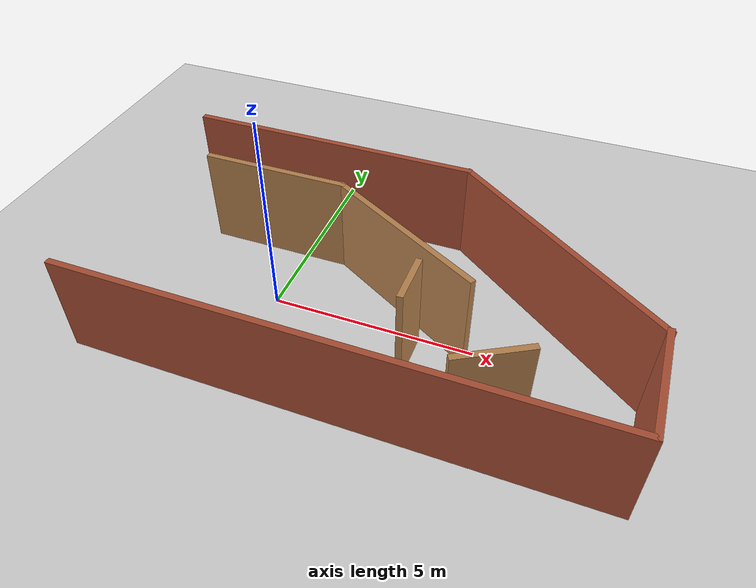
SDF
<sdf version='1.6'>
  <world name='default'>
    <include>
      <uri>model://ground_plane</uri>
    </include>
    <model name='Test_world'>
      <pose frame=''>2.57471 0.33178 0 0 -0 0</pose>
      <link name='Wall_0'>
        <collision name='Wall_0_Collision'>
          <geometry>
            <box>
              <size>12.5897 0.15 2.5</size>
            </box>
          </geometry>
          <pose frame=''>0 0 1.25 0 -0 0</pose>
          <max_contacts>10</max_contacts>
          <surface>
            <contact>
              <ode/>
            </contact>
            <bounce/>
            <friction>
              <torsional>
                <ode/>
              </torsional>
              <ode/>
            </friction>
          </surface>
        </collision>
        <visual name='Wall_0_Visual'>
          <pose frame=''>0 0 1.25 0 -0 0</pose>
          <geometry>
            <box>
              <size>12.5897 0.15 2.5</size>
            </box>
          </geometry>
          <material>
            <script>
              <uri>file://media/materials/scripts/gazebo.material</uri>
              <name>Gazebo/Bricks</name>
            </script>
            <ambient>1 1 1 1</ambient>
          </material>
          <meta>
            <layer>0</layer>
          </meta>
        </visual>
        <pose frame=''>-0.014902 -3.20802 0 0 -0 -0.004218</pose>
        <self_collide>0</self_collide>
        <enable_wind>0</enable_wind>
        <kinematic>0</kinematic>
      </link>
      <link name='Wall_1'>
        <collision name='Wall_1_Collision'>
          <geometry>
            <box>
              <size>2.75 0.15 2.5</size>
            </box>
          </geometry>
          <pose frame=''>0 0 1.25 0 -0 0</pose>
          <max_contacts>10</max_contacts>
          <surface>
            <contact>
              <ode/>
            </contact>
            <bounce/>
            <friction>
              <torsional>
                <ode/>
              </torsional>
              <ode/>
            </friction>
          </surface>
        </collision>
        <visual name='Wall_1_Visual'>
          <pose frame=''>0 0 1.25 0 -0 0</pose>
          <geometry>
            <box>
              <size>2.75 0.15 2.5</size>
            </box>
          </geometry>
          <material>
            <script>
              <uri>file://media/materials/scripts/gazebo.material</uri>
              <name>Gazebo/Bricks</name>
            </script>
            <ambient>1 1 1 1</ambient>
          </material>
          <meta>
            <layer>0</layer>
          </meta>
        </visual>
        <pose frame=''>6.2049 -1.91676 0 0 -0 1.5708</pose>
        <self_collide>0</self_collide>
        <enable_wind>0</enable_wind>
        <kinematic>0</kinematic>
      </link>
      <link name='Wall_11'>
        <collision name='Wall_11_Collision'>
          <geometry>
            <box>
              <size>3.75 0.15 2.5</size>
            </box>
          </geometry>
          <pose frame=''>0 0 1.25 0 -0 0</pose>
          <max_contacts>10</max_contacts>
          <surface>
            <contact>
              <ode/>
            </contact>
            <bounce/>
            <friction>
              <torsional>
                <ode/>
              </torsional>
              <ode/>
            </friction>
          </surface>
        </collision>
        <visual name='Wall_11_Visual'>
          <pose frame=''>0 0 1.25 0 -0 0</pose>
          <geometry>
            <box>
              <size>3.75 0.15 2.5</size>
            </box>
          </geometry>
          <material>
            <script>
              <uri>file://media/materials/scripts/gazebo.material</uri>
              <name>Gazebo/Wood</name>
            </script>
            <ambient>1 1 1 1</ambient>
          </material>
          <meta>
            <layer>0</layer>
          </meta>
        </visual>
        <pose frame=''>-3.32654 1.57825 0 0 -0 3.14159</pose>
        <self_collide>0</self_collide>
        <enable_wind>0</enable_wind>
        <kinematic>0</kinematic>
      </link>
      <link name='Wall_2'>
        <collision name='Wall_2_Collision'>
          <geometry>
            <box>
              <size>6.49705 0.15 2.5</size>
            </box>
          </geometry>
          <pose frame=''>0 0 1.25 0 -0 0</pose>
          <max_contacts>10</max_contacts>
          <surface>
            <contact>
              <ode/>
            </contact>
            <bounce/>
            <friction>
              <torsional>
                <ode/>
              </torsional>
              <ode/>
            </friction>
          </surface>
        </collision>
        <visual name='Wall_2_Visual'>
          <pose frame=''>0 0 1.25 0 -0 0</pose>
          <geometry>
            <box>
              <size>6.49705 0.15 2.5</size>
            </box>
          </geometry>
          <material>
            <script>
              <uri>file://media/materials/scripts/gazebo.material</uri>
              <name>Gazebo/Bricks</name>
            </script>
            <ambient>1 1 1 1</ambient>
          </material>
          <meta>
            <layer>0</layer>
          </meta>
        </visual>
        <pose frame=''>3.67759 1.28511 0 0 -0 2.49207</pose>
        <self_collide>0</self_collide>
        <enable_wind>0</enable_wind>
        <kinematic>0</kinematic>
      </link>
      <link name='Wall_3'>
        <collision name='Wall_3_Collision'>
          <geometry>
            <box>
              <size>7.5 0.15 2.5</size>
            </box>
          </geometry>
          <pose frame=''>0 0 1.25 0 -0 0</pose>
          <max_contacts>10</max_contacts>
          <surface>
            <contact>
              <ode/>
            </contact>
            <bounce/>
            <friction>
              <torsional>
                <ode/>
              </torsional>
              <ode/>
            </friction>
          </surface>
        </collision>
        <visual name='Wall_3_Visual'>
          <pose frame=''>0 0 1.25 0 -0 0</pose>
          <geometry>
            <box>
              <size>7.5 0.15 2.5</size>
            </box>
          </geometry>
          <material>
            <script>
              <uri>file://media/materials/scripts/gazebo.material</uri>
              <name>Gazebo/Bricks</name>
            </script>
            <ambient>1 1 1 1</ambient>
          </material>
          <meta>
            <layer>0</layer>
          </meta>
        </visual>
        <pose frame=''>-2.54222 3.20448 0 0 -0 3.14159</pose>
        <self_collide>0</self_collide>
        <enable_wind>0</enable_wind>
        <kinematic>0</kinematic>
      </link>
      <link name='Wall_5'>
        <collision name='Wall_5_Collision'>
          <geometry>
            <box>
              <size>1.25 0.15 2.5</size>
            </box>
          </geometry>
          <pose frame=''>0 0 1.25 0 -0 0</pose>
          <max_contacts>10</max_contacts>
          <surface>
            <contact>
              <ode/>
            </contact>
            <bounce/>
            <friction>
              <torsional>
                <ode/>
              </torsional>
              <ode/>
            </friction>
          </surface>
        </collision>
        <visual name='Wall_5_Visual'>
          <pose frame=''>0 0 1.25 0 -0 0</pose>
          <geometry>
            <box>
              <size>1.25 0.15 2.5</size>
            </box>
          </geometry>
          <material>
            <script>
              <uri>file://media/materials/scripts/gazebo.material</uri>
              <name>Gazebo/Wood</name>
            </script>
            <ambient>1 1 1 1</ambient>
          </material>
          <meta>
            <layer>0</layer>
          </meta>
        </visual>
        <pose frame=''>1.04449 -0.965614 0 0 -0 -1.5708</pose>
        <self_collide>0</self_collide>
        <enable_wind>0</enable_wind>
        <kinematic>0</kinematic>
      </link>
      <link name='Wall_7'>
        <collision name='Wall_7_Collision'>
          <geometry>
            <box>
              <size>1.75 0.15 2.5</size>
            </box>
          </geometry>
          <pose frame=''>0 0 1.25 0 -0 0</pose>
          <max_contacts>10</max_contacts>
          <surface>
            <contact>
              <ode/>
            </contact>
            <bounce/>
            <friction>
              <torsional>
                <ode/>
              </torsional>
              <ode/>
            </friction>
          </surface>
        </collision>
        <visual name='Wall_7_Visual'>
          <pose frame=''>0 0 1.25 0 -0 0</pose>
          <geometry>
            <box>
              <size>1.75 0.15 2.5</size>
            </box>
          </geometry>
          <material>
            <script>
              <uri>file://media/materials/scripts/gazebo.material</uri>
              <name>Gazebo/Wood</name>
            </script>
            <ambient>1 1 1 1</ambient>
          </material>
          <meta>
            <layer>0</layer>
          </meta>
        </visual>
        <pose frame=''>3.1715 -2.34179 0 0 -0 0.523599</pose>
        <self_collide>0</self_collide>
        <enable_wind>0</enable_wind>
        <kinematic>0</kinematic>
      </link>
      <link name='Wall_9'>
        <collision name='Wall_9_Collision'>
          <geometry>
            <box>
              <size>4.5 0.15 2.5</size>
            </box>
          </geometry>
          <pose frame=''>0 0 1.25 0 -0 0</pose>
          <max_contacts>10</max_contacts>
          <surface>
            <contact>
              <ode/>
            </contact>
            <bounce/>
            <friction>
              <torsional>
                <ode/>
              </torsional>
              <ode/>
            </friction>
          </surface>
        </collision>
        <visual name='Wall_9_Visual'>
          <pose frame=''>0 0 1.25 0 -0 0</pose>
          <geometry>
            <box>
              <size>4.5 0.15 2.5</size>
            </box>
          </geometry>
          <material>
            <script>
              <uri>file://media/materials/scripts/gazebo.material</uri>
              <name>Gazebo/Wood</name>
            </script>
            <ambient>1 1 1 1</ambient>
          </material>
          <meta>
            <layer>0</layer>
          </meta>
        </visual>
        <pose frame=''>0.35706 0.490754 0 0 -0 -0.523599</pose>
        <self_collide>0</self_collide>
        <enable_wind>0</enable_wind>
        <kinematic>0</kinematic>
      </link>
      <static>1</static>
    </model>
  </world>
</sdf>
